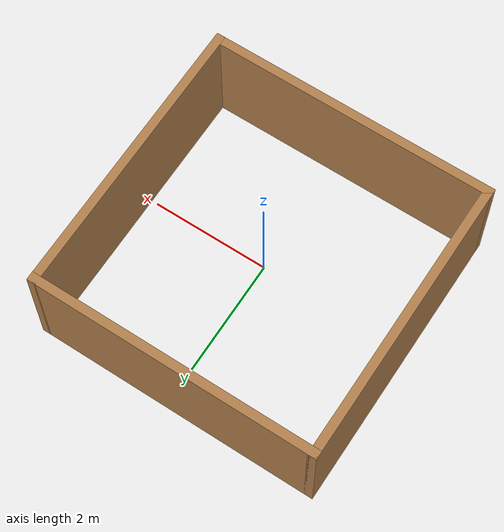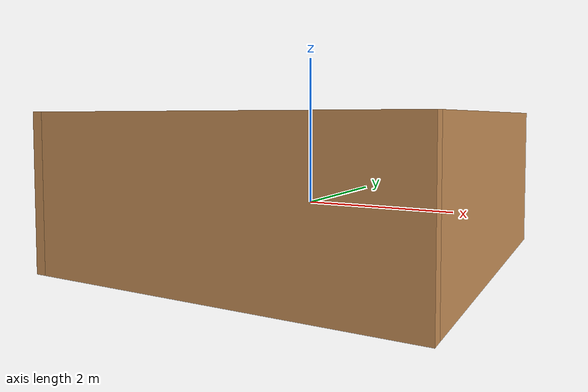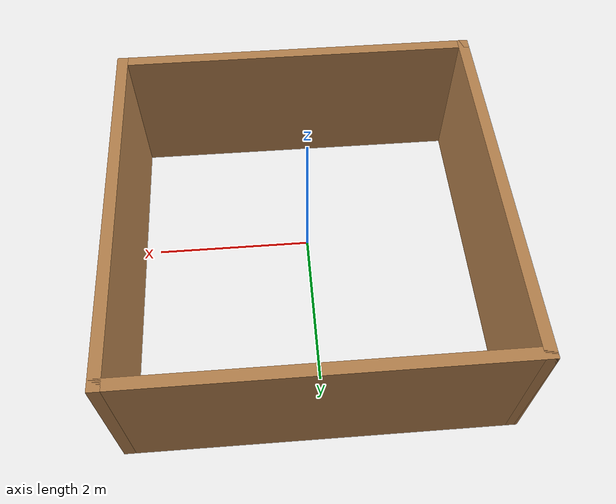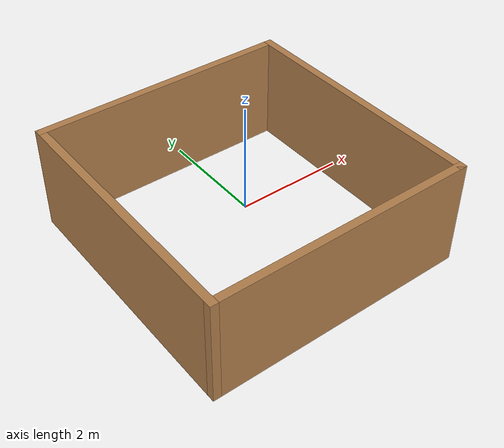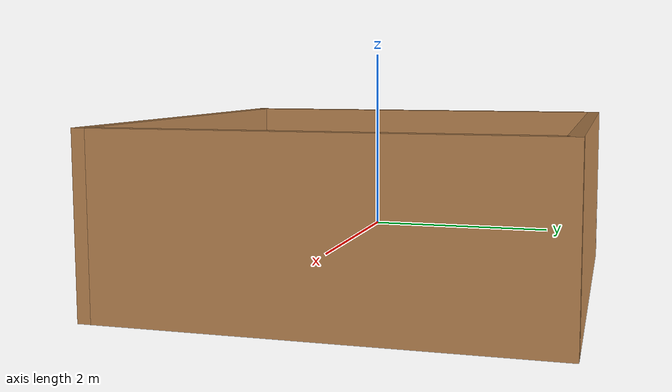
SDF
<?xml version='1.0'?>
<sdf version='1.6'>
  <model name='turtlebot3_square'>
    <pose frame=''>0 0 0 0 0 0</pose>
    <link name='Wall_1'>
      <collision name='Wall_1_Collision'>
        <geometry>
          <box>
            <size>5 0.15 2.0</size>
          </box>
        </geometry>
        <pose frame=''>0 0 0.25 0 -0 0</pose>
      </collision>
      <visual name='Wall_1_Visual'>
        <pose frame=''>0 0 0.25 0 -0 0</pose>
        <geometry>
          <box>
            <size>5 0.15 2.0</size>
          </box>
        </geometry>
        <material>
          <script>
            <uri>file://media/materials/scripts/gazebo.material</uri>
            <name>Gazebo/Wood</name>
          </script>
          <ambient>1 1 1 1</ambient>
        </material>
      </visual>
      <pose frame=''>-2.425 0 0 0 -0 1.5708</pose>
    </link>
    <link name='Wall_2'>
      <collision name='Wall_2_Collision'>
        <geometry>
          <box>
            <size>5 0.15 2.0</size>
          </box>
        </geometry>
        <pose frame=''>0 0 0.25 0 -0 0</pose>
      </collision>
      <visual name='Wall_2_Visual'>
        <pose frame=''>0 0 0.25 0 -0 0</pose>
        <geometry>
          <box>
            <size>5 0.15 2.0</size>
          </box>
        </geometry>
        <material>
          <script>
            <uri>file://media/materials/scripts/gazebo.material</uri>
            <name>Gazebo/Wood</name>
          </script>
          <ambient>1 1 1 1</ambient>
        </material>
      </visual>
      <pose frame=''>0 2.425 0 0 -0 0</pose>
    </link>
    <link name='Wall_3'>
      <collision name='Wall_3_Collision'>
        <geometry>
          <box>
            <size>5 0.15 2.0</size>
          </box>
        </geometry>
        <pose frame=''>0 0 0.25 0 -0 0</pose>
      </collision>
      <visual name='Wall_3_Visual'>
        <pose frame=''>0 0 0.25 0 -0 0</pose>
        <geometry>
          <box>
            <size>5 0.15 2.0</size>
          </box>
        </geometry>
        <material>
          <script>
            <uri>file://media/materials/scripts/gazebo.material</uri>
            <name>Gazebo/Wood</name>
          </script>
          <ambient>1 1 1 1</ambient>
        </material>
      </visual>
      <pose frame=''>2.425 0 0 0 0 -1.5708</pose>
    </link>
    <link name='Wall_4'>
      <collision name='Wall_4_Collision'>
        <geometry>
          <box>
            <size>5 0.15 2.0</size>
          </box>
        </geometry>
        <pose frame=''>0 0 0.25 0 -0 0</pose>
      </collision>
      <visual name='Wall_4_Visual'>
        <pose frame=''>0 0 0.25 0 -0 0</pose>
        <geometry>
          <box>
            <size>5 0.15 2.0</size>
          </box>
        </geometry>
        <material>
          <script>
            <uri>file://media/materials/scripts/gazebo.material</uri>
            <name>Gazebo/Wood</name>
          </script>
          <ambient>1 1 1 1</ambient>
        </material>
      </visual>
      <pose frame=''>0 -2.425 0 0 -0 3.14159</pose>
    </link>
    <static>1</static>
  </model>
</sdf>
